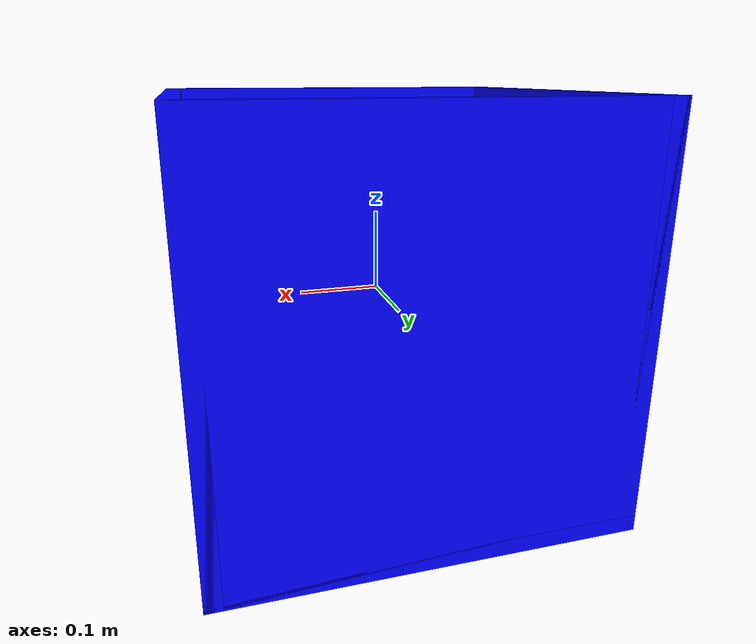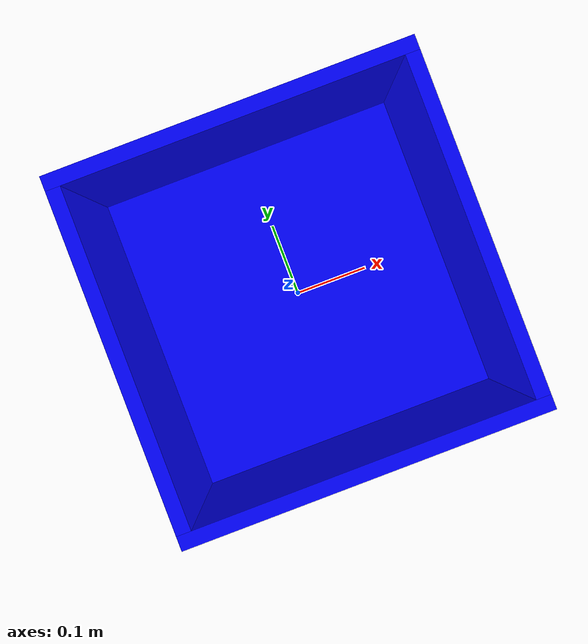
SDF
<sdf version="1.7">
  <model name="drop_box">
    <static>true</static>
    <link name="link">

      <!-- Bottom panel -->
      <visual name="bottom_visual">
        <pose>0 0 -0.24 0 0 0</pose>  <!-- lower by half the total height minus half thickness -->
        <geometry>
          <box>
            <size>0.5 0.5 0.02</size>  <!-- width, depth, thickness -->
          </box>
        </geometry>
        <material><ambient>0 0 1 1</ambient></material>
      </visual>
      <collision name="bottom_collision">
        <pose>0 0 -0.24 0 0 0</pose>
        <geometry>
          <box>
            <size>0.5 0.5 0.02</size>
          </box>
        </geometry>
      </collision>

      <!-- Front wall -->
      <visual name="front_visual">
        <pose>0 0.24 0 0 0 0</pose>  <!-- y = half-depth minus half-thickness -->
        <geometry>
          <box>
            <size>0.5 0.02 0.5</size>  <!-- width, thickness, height -->
          </box>
        </geometry>
        <material><ambient>0 0 1 1</ambient></material>
      </visual>
      <collision name="front_collision">
        <pose>0 0.24 0 0 0 0</pose>
        <geometry>
          <box>
            <size>0.5 0.02 0.5</size>
          </box>
        </geometry>
      </collision>

      <!-- Back wall -->
      <visual name="back_visual">
        <pose>0 -0.24 0 0 0 0</pose>
        <geometry>
          <box>
            <size>0.5 0.02 0.5</size>
          </box>
        </geometry>
        <material><ambient>0 0 1 1</ambient></material>
      </visual>
      <collision name="back_collision">
        <pose>0 -0.24 0 0 0 0</pose>
        <geometry>
          <box>
            <size>0.5 0.02 0.5</size>
          </box>
        </geometry>
      </collision>

      <!-- Left wall -->
      <visual name="left_visual">
        <pose>0.24 0 0 0 0 0</pose>
        <geometry>
          <box>
            <size>0.02 0.5 0.5</size>
          </box>
        </geometry>
        <material><ambient>0 0 1 1</ambient></material>
      </visual>
      <collision name="left_collision">
        <pose>0.24 0 0 0 0 0</pose>
        <geometry>
          <box>
            <size>0.02 0.5 0.5</size>
          </box>
        </geometry>
      </collision>

      <!-- Right wall -->
      <visual name="right_visual">
        <pose>-0.24 0 0 0 0 0</pose>
        <geometry>
          <box>
            <size>0.02 0.5 0.5</size>
          </box>
        </geometry>
        <material><ambient>0 0 1 1</ambient></material>
      </visual>
      <collision name="right_collision">
        <pose>-0.24 0 0 0 0 0</pose>
        <geometry>
          <box>
            <size>0.02 0.5 0.5</size>
          </box>
        </geometry>
      </collision>

    </link>
  </model>
</sdf>
